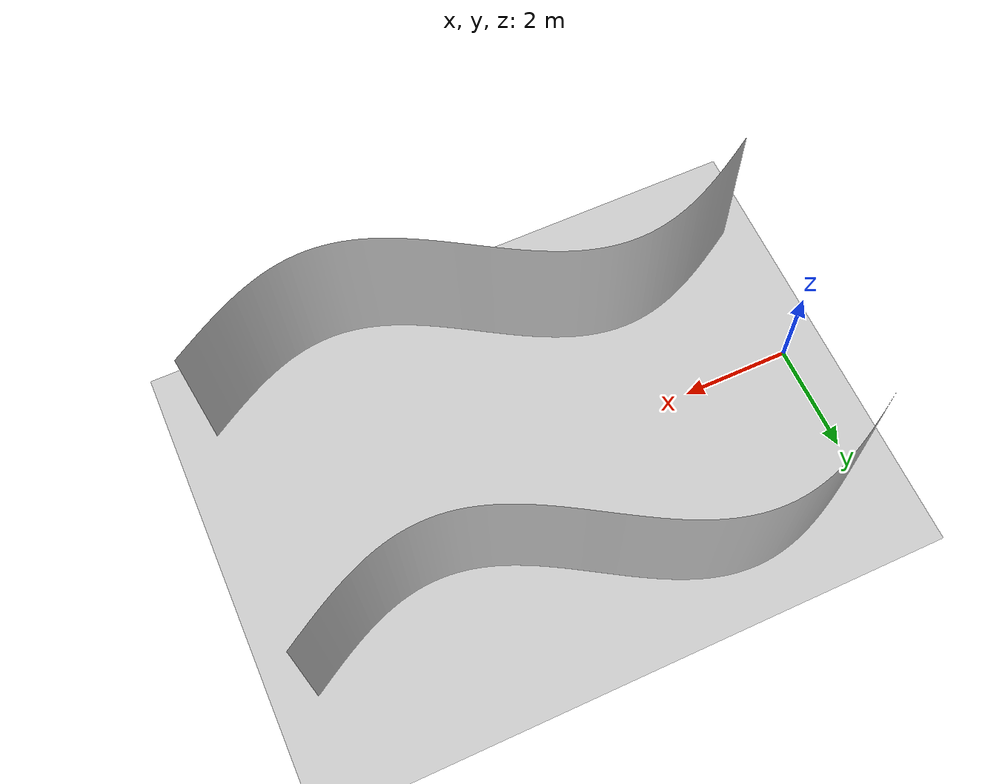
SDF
<?xml version="1.0" ?>
<sdf version="1.7">
  <world name="default">
    <!-- Include the ground plane -->
    <include>
      <uri>model://ground_plane</uri>
    </include>

    <!-- Include the S-shaped wall model -->
    <include>
      <uri>model://s_shaped_wall</uri>
      <pose>0.0 -2.5 0.5 0 -0 0</pose>
      <name>s_shaped_wall_1</name>
    </include>

    <!-- Include the S-shaped wall model -->
    <include>
      <uri>model://s_shaped_wall</uri>
      <pose>0.0 2.5 0.5 0 -0 0</pose>
      <name>s_shaped_wall_2</name>
    </include>

    <!-- Add a light source -->
    <light name="sun" type="directional">
      <cast_shadows>true</cast_shadows>
      <pose>0 0 10 0 -0 0</pose>
      <diffuse>1 1 1 1</diffuse>
      <specular>0.1 0.1 0.1 1</specular>
      <attenuation>
        <range>1000</range>
        <constant>0.9</constant>
        <linear>0.01</linear>
        <quadratic>0.001</quadratic>
      </attenuation>
      <direction>-0.5 0.5 -1</direction>
    </light>
  </world>
</sdf>

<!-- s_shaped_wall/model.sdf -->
<sdf version="1.7">
  <model name="s_shaped_wall">
    <static>true</static>
    <link name="wall_link">
      <!-- Visual -->
      <visual name="wall_visual">
        <geometry>
          <mesh>
            <uri>model://meshes/s_shaped_wall.stl</uri>
            <scale>1 1 1</scale>
          </mesh>
        </geometry>
      </visual>

      <!-- Collision -->
      <collision name="wall_collision">
        <geometry>
          <mesh>
            <uri>model://meshes/s_shaped_wall.stl</uri>
            <scale>1 1 1</scale>
          </mesh>
        </geometry>
      </collision>
    </link>
  </model>
</sdf>
